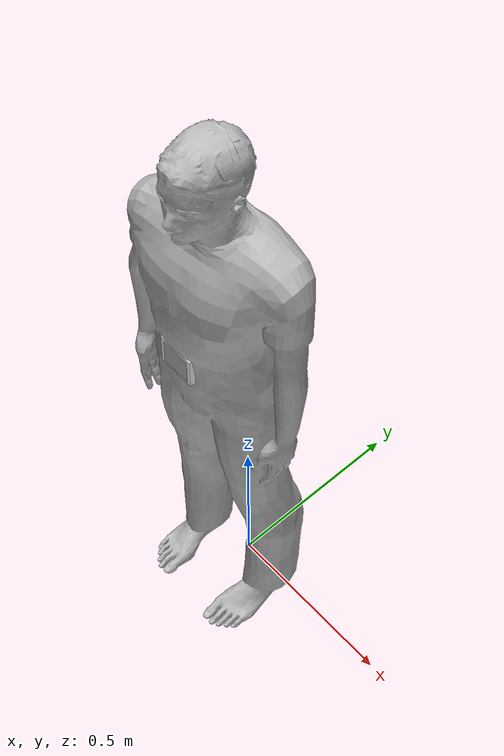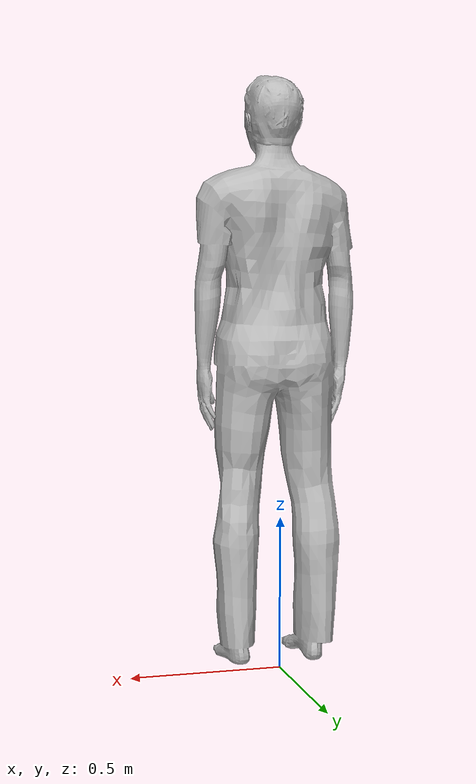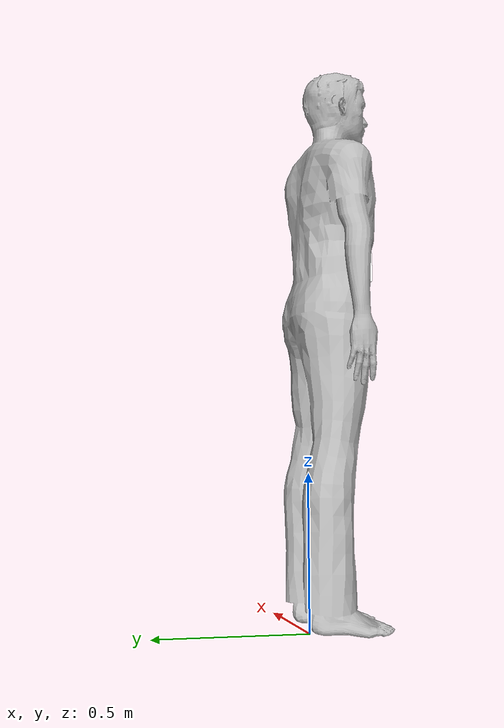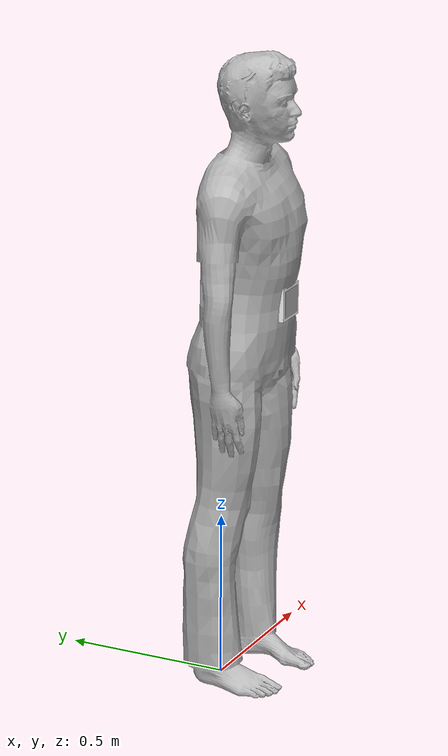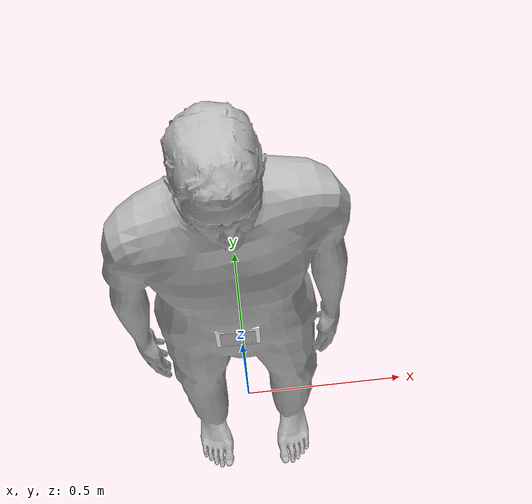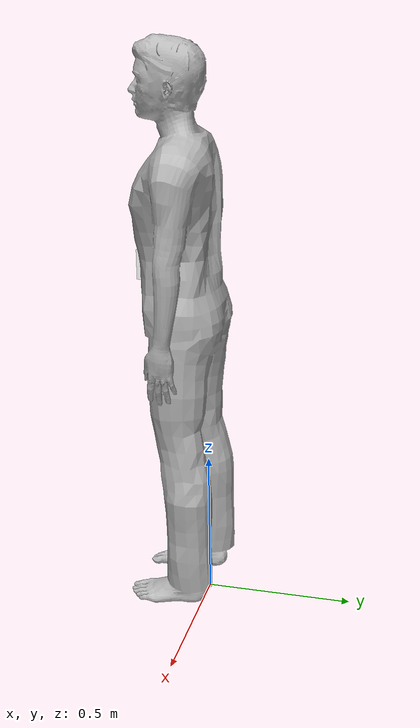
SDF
<?xml version="1.0" ?>
<sdf version="1.5">
  <model name="staff_person">
    <link name="link">
      <inertial>
        <pose>0 -0.1 0.95 0 0 0</pose>
        <mass>80.0</mass>
        <inertia>
          <ixx>24.88</ixx>
          <ixy>0</ixy>
          <ixz>0</ixz>
          <iyy>25.73</iyy>
          <iyz>0</iyz>
          <izz>2.48</izz>
        </inertia>
      </inertial>
      <collision name="bottom">
        <pose>0 -0.1 0.01 0 0 0</pose>
        <geometry>
          <box>
            <size>0.5 0.35 0.02</size>
          </box>
        </geometry>
      </collision>
      <collision name="person">
        <pose>0 0 0.02 0.04 0 0</pose>
        <geometry>
          <mesh>
            <uri>model://person_standing/meshes/standing.dae</uri>
          </mesh>
        </geometry>
      </collision>
      <visual name="visual">
        <pose>0 0 0.02 0.04 0 0</pose>
        <geometry>
          <mesh>
            <uri>model://person_standing/meshes/standing.dae</uri>
          </mesh>
        </geometry>
      </visual>
    </link>
    <!-- STAFF BADGE -->
    <link name="staff_badge">
      <pose>0 -0.21 1.2 0 0 3.14159</pose>
      <visual name="badge_visual">
        <geometry>
          <box>
            <size>0.1 0.02 0.1</size>
          </box>
        </geometry>
        <material>
          <ambient>1 1 1 1</ambient>
          <diffuse>1 1 1 1</diffuse>
          <script>
            <n>Gazebo/White</n>
          </script>
        </material>
      </visual>
      <!-- AprilTag texture -->
      <visual name="apriltag">
        <pose>0 0.011 0 0 0 0</pose>
        <geometry>
          <box>
            <size>0.08 0.001 0.08</size>
          </box>
        </geometry>
        <material>
          <script>
            <uri>model://staff_person/materials/scripts</uri>
            <name>StaffTag</name>
          </script>
        </material>
      </visual>
    </link>
    <joint name="badge_joint" type="fixed">
      <parent>link</parent>
      <child>staff_badge</child>
    </joint>
  </model>
</sdf>
